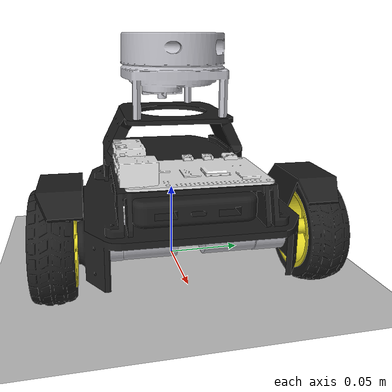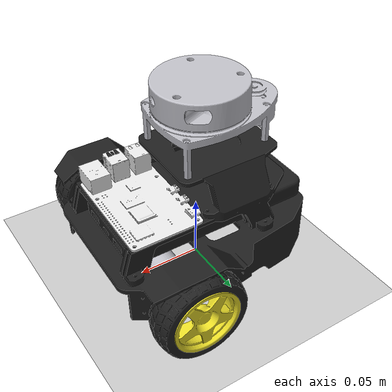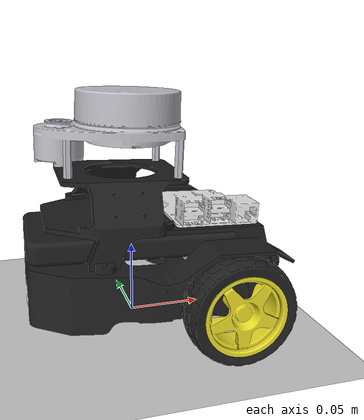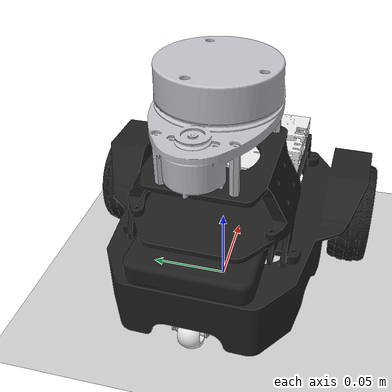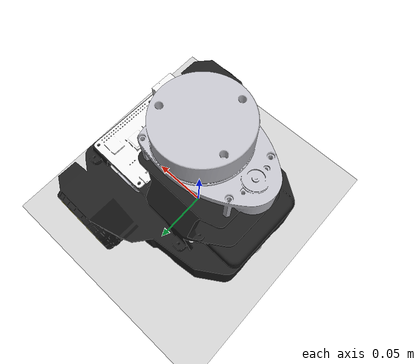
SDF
<sdf version="1.6">
 <world name="default">
  <light name="sun" type="directional">
   <pose>0 0 10 0 -0 0</pose>
   <diffuse>0.8 0.8 0.8 1</diffuse>
   <specular>0.2 0.2 0.2 1</specular>
   <attenuation>
    <range>1000</range>
    <constant>0.9</constant>
    <linear>0.01</linear>
    <quadratic>0.001</quadratic>
   </attenuation>
   <direction>-0.5 0.1 -0.9</direction>
  </light>
  <model name="ground_plane">
   <static>1</static>
   <link name="link">
    <collision name="collision">
     <geometry><plane><normal>0 0 1</normal><size>100 100</size></plane></geometry>
     <surface><friction><ode><mu>100</mu><mu2>50</mu2></ode></friction></surface>
    </collision>
    <visual name="visual">
     <cast_shadows>0</cast_shadows>
     <geometry><plane><normal>0 0 1</normal><size>100 100</size></plane></geometry>
     <material>
      <script><uri>file://media/materials/scripts/gazebo.material</uri><name>Gazebo/Grey</name></script>
     </material>
    </visual>
   </link>
  </model>
  <gravity>0 0 -9.8</gravity>
  <magnetic_field>6e-06 2.3e-05 -4.2e-05</magnetic_field>
  <atmosphere type="adiabatic"/>
  <physics name="default_physics" default="0" type="ode">
   <max_step_size>0.001</max_step_size>
   <real_time_factor>1</real_time_factor>
   <real_time_update_rate>1000</real_time_update_rate>
  </physics>
  <scene><ambient>0.4 0.4 0.4 1</ambient><background>0.7 0.7 0.7 1</background><shadows>1</shadows></scene>
  <audio><device>default</device></audio>
  <spherical_coordinates>
   <surface_model>EARTH_WGS84</surface_model>
   <latitude_deg>0</latitude_deg>
   <longitude_deg>0</longitude_deg>
   <elevation>0</elevation>
   <heading_deg>0</heading_deg>
  </spherical_coordinates>
  <model name="gonzo">
   <link name="base_link">
    <inertial>
     <pose>0.002433 0.000676 0.103874 0 -0 0</pose>
     <mass>6.64566</mass>
     <inertia>
      <ixx>0.0571355</ixx>
      <ixy>0.000357824</ixy>
      <ixz>-0.00313696</ixz>
      <iyy>0.0645681</iyy>
      <iyz>0.000449581</iyz>
      <izz>0.079505</izz>
     </inertia>
    </inertial>
    <collision name="base_link_fixed_joint_lump__battery_link_collision">
     <geometry>
      <mesh>
       <scale>0.001 0.001 0.001</scale>
       <uri>/home/maquintel/gonzo_ws/src/gonzo_description/meshes/battery_link.stl</uri>
      </mesh>
     </geometry>
     <surface><friction><ode><mu>0.2</mu><mu2>0.2</mu2></ode></friction></surface>
    </collision>
    <collision name="base_link_fixed_joint_lump__caster_base_collision_1">
     <geometry>
      <mesh>
       <scale>0.001 0.001 0.001</scale>
       <uri>/home/maquintel/gonzo_ws/src/gonzo_description/meshes/caster_base.stl</uri>
      </mesh>
     </geometry>
     <surface><friction><ode><mu>0.2</mu><mu2>0.2</mu2></ode></friction></surface>
    </collision>
    <collision name="base_link_fixed_joint_lump__caster_holder_collision_2">
     <geometry>
      <mesh>
       <scale>0.001 0.001 0.001</scale>
       <uri>/home/maquintel/gonzo_ws/src/gonzo_description/meshes/caster_holder.stl</uri>
      </mesh>
     </geometry>
     <surface><friction><ode><mu>0.2</mu><mu2>0.2</mu2></ode></friction></surface>
    </collision>
    <collision name="base_link_fixed_joint_lump__caster_wheel_collision_3">
     <pose>-0.063 -0.0001 0.013814 0 -0 0</pose>
     <geometry><sphere><radius>0.015</radius></sphere></geometry>
     <surface><friction><ode><mu>0</mu><mu2>0</mu2></ode></friction></surface>
    </collision>
    <collision name="base_link_fixed_joint_lump__chassis_link_collision_4">
     <geometry>
      <mesh>
       <scale>0.001 0.001 0.001</scale>
       <uri>/home/maquintel/gonzo_ws/src/gonzo_description/meshes/base_link.stl</uri>
      </mesh>
     </geometry>
     <surface><friction><ode><mu>0.1</mu><mu2>0.1</mu2></ode></friction></surface>
    </collision>
    <collision name="base_link_fixed_joint_lump__laser_collision_5">
     <geometry>
      <mesh>
       <scale>0.001 0.001 0.001</scale>
       <uri>/home/maquintel/gonzo_ws/src/gonzo_description/meshes/laser.stl</uri>
      </mesh>
     </geometry>
     <surface><friction><ode><mu>0.2</mu><mu2>0.2</mu2></ode></friction></surface>
    </collision>
    <collision name="base_link_fixed_joint_lump__left_motor_collision_6">
     <pose>0 0.0001 0 0 -0 0</pose>
     <geometry>
      <mesh>
       <scale>0.001 0.001 0.001</scale>
       <uri>/home/maquintel/gonzo_ws/src/gonzo_description/meshes/left_motor.stl</uri>
      </mesh>
     </geometry>
     <surface><friction><ode><mu>0.2</mu><mu2>0.2</mu2></ode></friction></surface>
    </collision>
    <collision name="base_link_fixed_joint_lump__raspberry_collision_7">
     <geometry>
      <mesh>
       <scale>0.001 0.001 0.001</scale>
       <uri>/home/maquintel/gonzo_ws/src/gonzo_description/meshes/raspberry.stl</uri>
      </mesh>
     </geometry>
     <surface><friction><ode><mu>0.2</mu><mu2>0.2</mu2></ode></friction></surface>
    </collision>
    <collision name="base_link_fixed_joint_lump__right_motor_collision_8">
     <pose>0 0.0001 0 0 -0 0</pose>
     <geometry>
      <mesh>
       <scale>0.001 0.001 0.001</scale>
       <uri>/home/maquintel/gonzo_ws/src/gonzo_description/meshes/right_motor.stl</uri>
      </mesh>
     </geometry>
     <surface><friction><ode><mu>0.2</mu><mu2>0.2</mu2></ode></friction></surface>
    </collision>
    <visual name="base_link_fixed_joint_lump__battery_link_visual">
     <geometry>
      <mesh>
       <scale>0.001 0.001 0.001</scale>
       <uri>/home/maquintel/gonzo_ws/src/gonzo_description/meshes/battery_link.stl</uri>
      </mesh>
     </geometry>
     <material>
      <script><name>Gazebo/Black</name><uri>file://media/materials/scripts/gazebo.material</uri></script>
     </material>
    </visual>
    <visual name="base_link_fixed_joint_lump__caster_base_visual_1">
     <geometry>
      <mesh>
       <scale>0.001 0.001 0.001</scale>
       <uri>/home/maquintel/gonzo_ws/src/gonzo_description/meshes/caster_base.stl</uri>
      </mesh>
     </geometry>
     <material>
      <script><name>Gazebo/Silver</name><uri>file://media/materials/scripts/gazebo.material</uri></script>
     </material>
    </visual>
    <visual name="base_link_fixed_joint_lump__caster_holder_visual_2">
     <geometry>
      <mesh>
       <scale>0.001 0.001 0.001</scale>
       <uri>/home/maquintel/gonzo_ws/src/gonzo_description/meshes/caster_holder.stl</uri>
      </mesh>
     </geometry>
     <material>
      <script><name>Gazebo/Silver</name><uri>file://media/materials/scripts/gazebo.material</uri></script>
     </material>
    </visual>
    <visual name="base_link_fixed_joint_lump__caster_wheel_visual_3">
     <pose>0 -0.0001 0 0 -0 0</pose>
     <geometry>
      <mesh>
       <scale>0.001 0.001 0.001</scale>
       <uri>/home/maquintel/gonzo_ws/src/gonzo_description/meshes/caster_wheel.stl</uri>
      </mesh>
     </geometry>
     <material>
      <script><name>Gazebo/White</name><uri>file://media/materials/scripts/gazebo.material</uri></script>
     </material>
    </visual>
    <visual name="base_link_fixed_joint_lump__chassis_link_visual_4">
     <geometry>
      <mesh>
       <scale>0.001 0.001 0.001</scale>
       <uri>/home/maquintel/gonzo_ws/src/gonzo_description/meshes/base_link.stl</uri>
      </mesh>
     </geometry>
     <material>
      <script><name>Gazebo/Black</name><uri>file://media/materials/scripts/gazebo.material</uri></script>
     </material>
    </visual>
    <visual name="base_link_fixed_joint_lump__laser_visual_5">
     <geometry>
      <mesh>
       <scale>0.001 0.001 0.001</scale>
       <uri>/home/maquintel/gonzo_ws/src/gonzo_description/meshes/laser.dae</uri>
      </mesh>
     </geometry>
     <material>
      <script><name>Gazebo/Silver</name><uri>file://media/materials/scripts/gazebo.material</uri></script>
     </material>
    </visual>
    <visual name="base_link_fixed_joint_lump__left_motor_visual_6">
     <pose>0 0.0001 0 0 -0 0</pose>
     <geometry>
      <mesh>
       <scale>0.001 0.001 0.001</scale>
       <uri>/home/maquintel/gonzo_ws/src/gonzo_description/meshes/left_motor.stl</uri>
      </mesh>
     </geometry>
     <material>
      <script><name>Gazebo/Silver</name><uri>file://media/materials/scripts/gazebo.material</uri></script>
     </material>
    </visual>
    <visual name="base_link_fixed_joint_lump__raspberry_visual_7">
     <geometry>
      <mesh>
       <scale>0.001 0.001 0.001</scale>
       <uri>/home/maquintel/gonzo_ws/src/gonzo_description/meshes/raspberry.stl</uri>
      </mesh>
     </geometry>
     <material>
      <script><name>Gazebo/White</name><uri>file://media/materials/scripts/gazebo.material</uri></script>
     </material>
    </visual>
    <visual name="base_link_fixed_joint_lump__right_motor_visual_8">
     <pose>0 0.0001 0 0 -0 0</pose>
     <geometry>
      <mesh>
       <scale>0.001 0.001 0.001</scale>
       <uri>/home/maquintel/gonzo_ws/src/gonzo_description/meshes/right_motor.stl</uri>
      </mesh>
     </geometry>
     <material>
      <script><name>Gazebo/Silver</name><uri>file://media/materials/scripts/gazebo.material</uri></script>
     </material>
    </visual>
    <sensor name="head_hokuyo_sensor" type="ray">
     <visualize>1</visualize>
     <update_rate>5.5</update_rate>
     <ray>
      <scan>
       <horizontal>
        <samples>360</samples>
        <resolution>1</resolution>
        <min_angle>-3.14159</min_angle>
        <max_angle>3.14159</max_angle>
       </horizontal>
       <vertical><samples>1</samples><min_angle>0</min_angle><max_angle>0</max_angle></vertical>
      </scan>
      <range><min>0.3</min><max>6</max></range>
      <noise><type>gaussian</type><mean>0</mean><stddev>0.01</stddev></noise>
     </ray>
     <plugin name="gazebo_ros_head_hokuyo_controller" filename="libgazebo_ros_laser.so">
      <topicName>/gonzo/sensors/lidar/scan</topicName>
      <frameName>laser</frameName>
      <robotNamespace>/</robotNamespace>
     </plugin>
     <pose>-0.005 -0.0001 0.15 0 -0 0</pose>
    </sensor>
   </link>
   <link name="left_wheel">
    <pose>0.0475 0.067125 0.0347 -1.5708 0 0</pose>
    <inertial>
     <pose>0 0.013494 -0 0 -0 0</pose>
     <mass>0.22182</mass>
     <inertia>
      <ixx>0.000353292</ixx>
      <ixy>-4.29456e-11</ixy>
      <ixz>3.30065e-16</ixz>
      <iyy>0.00059</iyy>
      <iyz>2.53021e-11</iyz>
      <izz>0.000353292</izz>
     </inertia>
    </inertial>
    <collision name="left_wheel_collision">
     <pose>-0.0475 0.0347 -0.067225 1.5708 -0 0</pose>
     <geometry>
      <mesh>
       <scale>0.001 0.001 0.001</scale>
       <uri>/home/maquintel/gonzo_ws/src/gonzo_description/meshes/left_wheel.stl</uri>
      </mesh>
     </geometry>
     <surface><friction><ode><mu>1</mu><mu2>1</mu2></ode></friction></surface>
    </collision>
    <collision name="left_wheel_fixed_joint_lump__left_tyre_collision_1">
     <pose>0 0 0.013 0 -0 0</pose>
     <geometry><cylinder><length>0.024</length><radius>0.033</radius></cylinder></geometry>
     <surface>
      <contact><ode><kp>1e+07</kp><kd>1</kd></ode></contact>
      <friction><ode><mu>1</mu><mu2>1</mu2></ode></friction>
     </surface>
    </collision>
    <visual name="left_wheel_visual">
     <pose>-0.0475 0.0347 -0.067225 1.5708 -0 0</pose>
     <geometry>
      <mesh>
       <scale>0.001 0.001 0.001</scale>
       <uri>/home/maquintel/gonzo_ws/src/gonzo_description/meshes/left_wheel.stl</uri>
      </mesh>
     </geometry>
     <material>
      <script><name>Gazebo/Yellow</name><uri>file://media/materials/scripts/gazebo.material</uri></script>
     </material>
    </visual>
    <visual name="left_wheel_fixed_joint_lump__left_tyre_visual_1">
     <pose>-0.0475 0.0347 -0.067225 1.5708 -0 0</pose>
     <geometry>
      <mesh>
       <scale>0.001 0.001 0.001</scale>
       <uri>/home/maquintel/gonzo_ws/src/gonzo_description/meshes/left_tyre.stl</uri>
      </mesh>
     </geometry>
     <material>
      <script><name>Gazebo/Black</name><uri>file://media/materials/scripts/gazebo.material</uri></script>
     </material>
    </visual>
   </link>
   <joint name="left_wheel_joint" type="revolute">
    <child>left_wheel</child>
    <parent>base_link</parent>
    <axis>
     <xyz>0 1 0</xyz>
     <limit><lower>-1e+16</lower><upper>1e+16</upper></limit>
     <dynamics><spring_reference>0</spring_reference><spring_stiffness>0</spring_stiffness></dynamics>
     <use_parent_model_frame>1</use_parent_model_frame>
    </axis>
   </joint>
   <link name="right_wheel">
    <pose>0.0475 -0.067125 0.0347 1.5708 -0 0</pose>
    <inertial>
     <pose>-0 -0.017468 -0 0 -0 0</pose>
     <mass>1.22182</mass>
     <inertia>
      <ixx>0.00530095</ixx>
      <ixy>-3.01588e-11</ixy>
      <ixz>-3.49619e-16</ixz>
      <iyy>0.0095</iyy>
      <iyz>-1.10488e-11</iyz>
      <izz>0.00530095</izz>
     </inertia>
    </inertial>
    <collision name="right_wheel_collision">
     <pose>-0.0475 -0.0347 -0.067225 -1.5708 0 0</pose>
     <geometry>
      <mesh>
       <scale>0.001 0.001 0.001</scale>
       <uri>/home/maquintel/gonzo_ws/src/gonzo_description/meshes/right_wheel.stl</uri>
      </mesh>
     </geometry>
     <surface><friction><ode><mu>1</mu><mu2>1</mu2></ode></friction></surface>
    </collision>
    <collision name="right_wheel_fixed_joint_lump__right_tyre_collision_1">
     <pose>0 0 0.013 0 -0 0</pose>
     <geometry><cylinder><length>0.024</length><radius>0.033</radius></cylinder></geometry>
     <surface>
      <contact><ode><kp>1e+07</kp><kd>1</kd></ode></contact>
      <friction><ode><mu>1</mu><mu2>1</mu2></ode></friction>
     </surface>
    </collision>
    <visual name="right_wheel_visual">
     <pose>-0.0475 -0.0347 -0.067225 -1.5708 0 0</pose>
     <geometry>
      <mesh>
       <scale>0.001 0.001 0.001</scale>
       <uri>/home/maquintel/gonzo_ws/src/gonzo_description/meshes/right_wheel.stl</uri>
      </mesh>
     </geometry>
     <material>
      <script><name>Gazebo/Yellow</name><uri>file://media/materials/scripts/gazebo.material</uri></script>
     </material>
    </visual>
    <visual name="right_wheel_fixed_joint_lump__right_tyre_visual_1">
     <pose>-0.0475 -0.0347 -0.067225 -1.5708 0 0</pose>
     <geometry>
      <mesh>
       <scale>0.001 0.001 0.001</scale>
       <uri>/home/maquintel/gonzo_ws/src/gonzo_description/meshes/right_tyre.stl</uri>
      </mesh>
     </geometry>
     <material>
      <script><name>Gazebo/Black</name><uri>file://media/materials/scripts/gazebo.material</uri></script>
     </material>
    </visual>
   </link>
   <joint name="right_wheel_joint" type="revolute">
    <child>right_wheel</child>
    <parent>base_link</parent>
    <axis>
     <xyz>0 1 -0</xyz>
     <limit><lower>-1e+16</lower><upper>1e+16</upper></limit>
     <dynamics><spring_reference>0</spring_reference><spring_stiffness>0</spring_stiffness></dynamics>
     <use_parent_model_frame>1</use_parent_model_frame>
    </axis>
   </joint>
   <static>0</static>
   <plugin name="gazebo_ros_control" filename="libgazebo_ros_control.so">
    <robotNamespace>/</robotNamespace>
   </plugin>
   <pose>0.000108 0.00151 -0.000452 -6e-06 0.026074 -0.026194</pose>
  </model>
 </world>
</sdf>
